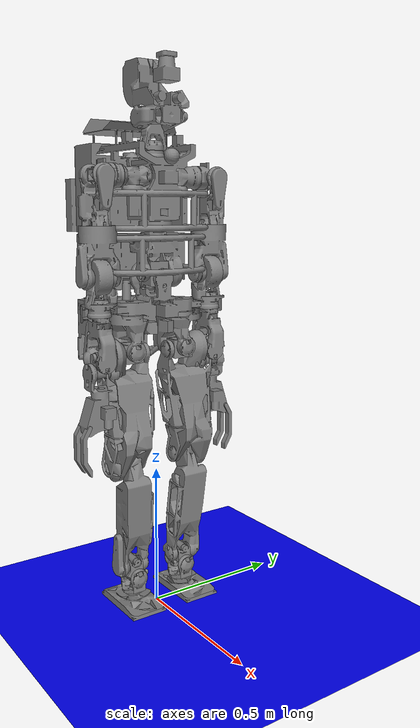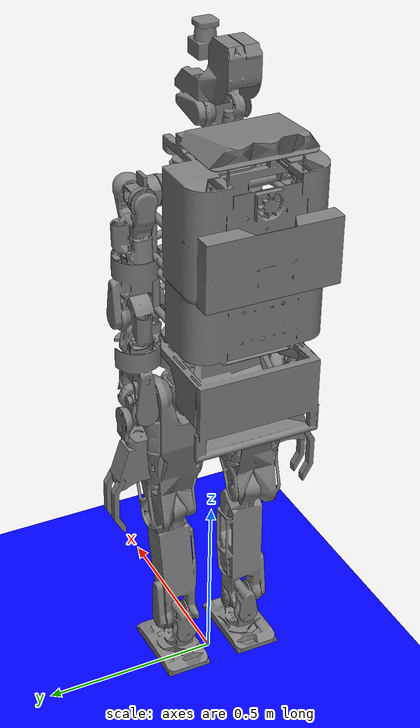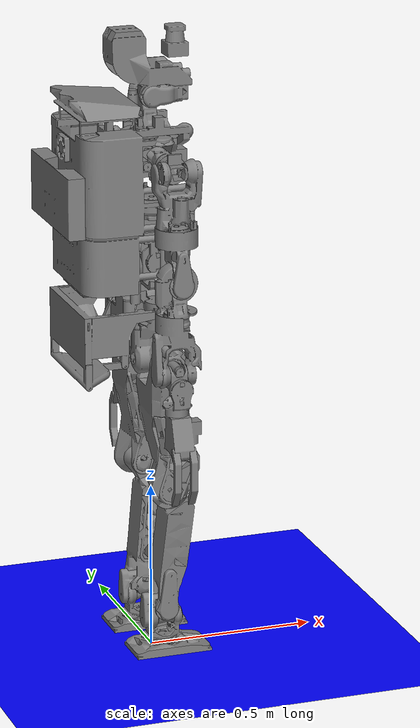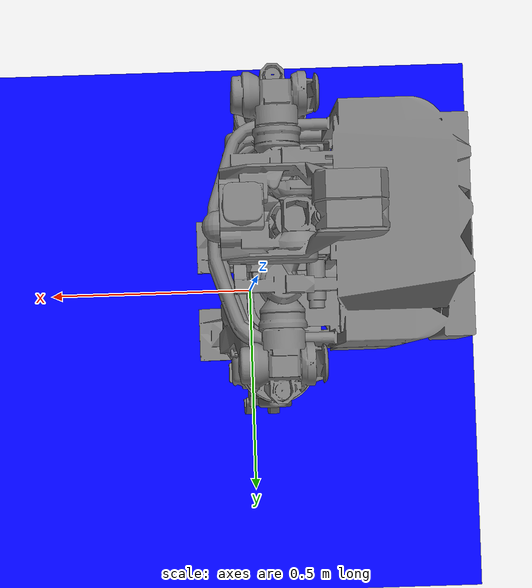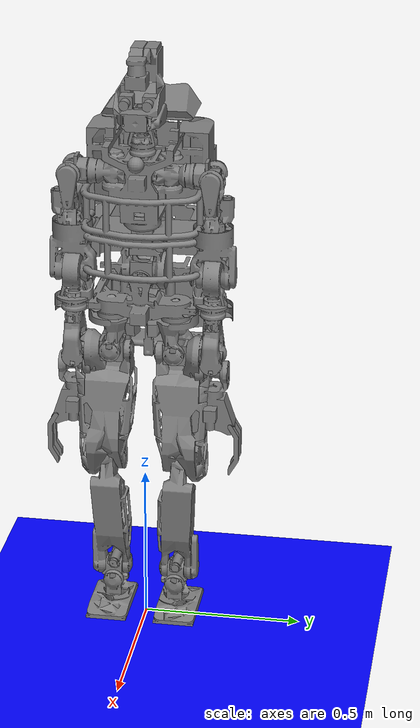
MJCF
<mujoco model="JAXON_JVRC">
    <compiler angle="radian" />
    <size njmax="500" nconmax="100" />
    <default>
        <joint damping="0.1"/>
        <motor ctrlrange="-.4 4." ctrllimited="true"/>
    </default>
    <contact>
        <exclude body1="CHEST_LINK0" body2="CHEST_LINK1"/>
        <exclude body1="CHEST_LINK1" body2="CHEST_LINK2"/>
        <exclude body1="CHEST_LINK2" body2="HEAD_LINK0"/>
        <exclude body1="HEAD_LINK0" body2="HEAD_LINK1"/>
        <exclude body1="HEAD_LINK1" body2="RANGE_LINK"/>
        <exclude body1="CHEST_LINK2" body2="LARM_LINK0"/>
        <exclude body1="LARM_LINK0" body2="LARM_LINK1"/>
        <exclude body1="LARM_LINK1" body2="LARM_LINK2"/>
        <exclude body1="LARM_LINK2" body2="LARM_LINK3"/>
        <exclude body1="LARM_LINK3" body2="LARM_LINK4"/>
        <exclude body1="LARM_LINK4" body2="LARM_LINK5"/>
        <exclude body1="LARM_LINK5" body2="LARM_LINK6"/>
        <exclude body1="LARM_LINK6" body2="LARM_LINK7"/>
        <exclude body1="LARM_LINK7" body2="LARM_FINGER0"/>
        <exclude body1="LARM_LINK7" body2="LARM_FINGER1"/>
        <exclude body1="RARM_LINK0" body2="RARM_LINK1"/>
        <exclude body1="RARM_LINK1" body2="RARM_LINK2"/>
        <exclude body1="RARM_LINK2" body2="RARM_LINK3"/>
        <exclude body1="RARM_LINK3" body2="RARM_LINK4"/>
        <exclude body1="RARM_LINK4" body2="RARM_LINK5"/>
        <exclude body1="RARM_LINK5" body2="RARM_LINK6"/>
        <exclude body1="RARM_LINK6" body2="RARM_LINK7"/>
        <exclude body1="RARM_LINK7" body2="RARM_FINGER0"/>
        <exclude body1="RARM_LINK7" body2="RARM_FINGER1"/>
        <exclude body1="LLEG_LINK0" body2="LLEG_LINK1"/>
        <exclude body1="LLEG_LINK1" body2="LLEG_LINK2"/>
        <exclude body1="LLEG_LINK2" body2="LLEG_LINK3"/>
        <exclude body1="LLEG_LINK3" body2="LLEG_LINK4"/>
        <exclude body1="LLEG_LINK4" body2="LLEG_LINK5"/>
        <exclude body1="RLEG_LINK0" body2="RLEG_LINK1"/>
        <exclude body1="RLEG_LINK1" body2="RLEG_LINK2"/>
        <exclude body1="RLEG_LINK2" body2="RLEG_LINK3"/>
        <exclude body1="RLEG_LINK3" body2="RLEG_LINK4"/>
        <exclude body1="RLEG_LINK4" body2="RLEG_LINK5"/>
    </contact>
    <asset>
        <mesh name="BODY_mesh" file="BODY_mesh.stl" />
        <mesh name="CHEST_LINK0_mesh" file="CHEST_LINK0_mesh.stl" />
        <mesh name="CHEST_LINK1_mesh" file="CHEST_LINK1_mesh.stl" />
        <mesh name="CHEST_LINK2_mesh" file="CHEST_LINK2_mesh.stl" />
        <mesh name="HEAD_LINK0_mesh" file="HEAD_LINK0_mesh.stl" />
        <mesh name="HEAD_LINK1_mesh" file="HEAD_LINK1_mesh.stl" />
        <mesh name="RANGE_LINK_mesh" file="RANGE_LINK_mesh.stl" />
        <mesh name="LARM_LINK0_mesh" file="LARM_LINK0_mesh.stl" />
        <mesh name="LARM_LINK1_mesh" file="LARM_LINK1_mesh.stl" />
        <mesh name="LARM_LINK2_mesh" file="LARM_LINK2_mesh.stl" />
        <mesh name="LARM_LINK3_mesh" file="LARM_LINK3_mesh.stl" />
        <mesh name="LARM_LINK4_mesh" file="LARM_LINK4_mesh.stl" />
        <mesh name="LARM_LINK5_mesh" file="LARM_LINK5_mesh.stl" />
        <mesh name="LARM_LINK6_mesh" file="LARM_LINK6_mesh.stl" />
        <mesh name="LARM_LINK7_mesh" file="LARM_LINK7_mesh.stl" />
        <mesh name="LARM_FINGER0_mesh" file="LARM_FINGER0_mesh.stl" />
        <mesh name="LARM_FINGER1_mesh" file="LARM_FINGER1_mesh.stl" />
        <mesh name="RARM_LINK0_mesh" file="RARM_LINK0_mesh.stl" />
        <mesh name="RARM_LINK1_mesh" file="RARM_LINK1_mesh.stl" />
        <mesh name="RARM_LINK2_mesh" file="RARM_LINK2_mesh.stl" />
        <mesh name="RARM_LINK3_mesh" file="RARM_LINK3_mesh.stl" />
        <mesh name="RARM_LINK4_mesh" file="RARM_LINK4_mesh.stl" />
        <mesh name="RARM_LINK5_mesh" file="RARM_LINK5_mesh.stl" />
        <mesh name="RARM_LINK6_mesh" file="RARM_LINK6_mesh.stl" />
        <mesh name="RARM_LINK7_mesh" file="RARM_LINK7_mesh.stl" />
        <mesh name="RARM_FINGER0_mesh" file="RARM_FINGER0_mesh.stl" />
        <mesh name="RARM_FINGER1_mesh" file="RARM_FINGER1_mesh.stl" />
        <mesh name="LLEG_LINK0_mesh" file="LLEG_LINK0_mesh.stl" />
        <mesh name="LLEG_LINK1_mesh" file="LLEG_LINK1_mesh.stl" />
        <mesh name="LLEG_LINK2_mesh" file="LLEG_LINK2_mesh.stl" />
        <mesh name="LLEG_LINK3_mesh" file="LLEG_LINK3_mesh.stl" />
        <mesh name="LLEG_LINK4_mesh" file="LLEG_LINK4_mesh.stl" />
        <mesh name="LLEG_LINK5_mesh" file="LLEG_LINK5_mesh.stl" />
        <mesh name="RLEG_LINK0_mesh" file="RLEG_LINK0_mesh.stl" />
        <mesh name="RLEG_LINK1_mesh" file="RLEG_LINK1_mesh.stl" />
        <mesh name="RLEG_LINK2_mesh" file="RLEG_LINK2_mesh.stl" />
        <mesh name="RLEG_LINK3_mesh" file="RLEG_LINK3_mesh.stl" />
        <mesh name="RLEG_LINK4_mesh" file="RLEG_LINK4_mesh.stl" />
        <mesh name="RLEG_LINK5_mesh" file="RLEG_LINK5_mesh.stl" />
    </asset>
    <worldbody>
        <geom name="plane" type="plane" size="1 1 .1" pos="0 0 0" rgba="0 0 1 1"/>
        <body name="jaxon" pos="0 0 1.05">
            <joint name="jaxon_free_joint" type="free"/>
            <geom pos="0 0 1.0225" type="mesh" mesh="BODY_mesh" />
            <body name="CHEST_LINK0" pos="0.006 0 0.128">
                <inertial pos="-0.0084 0.00137 0.01359" mass="0.866" diaginertia="0.00125384 0.00123407 0.000677392" />
                <joint name="CHEST_JOINT0" pos="0 0 0" axis="1 0 0" limited="true" range="-0.198551 0.198551" damping="0.2" />
                <geom pos="0.006 0 0.128" type="mesh" mesh="CHEST_LINK0_mesh" />
                <body name="CHEST_LINK1" pos="0 0 0.025">
                    <inertial pos="-0.111697 0.0039 0.03652" quat="0.0099888 0.65884 -0.00254466 0.752212" mass="18.23" diaginertia="0.482918 0.418072 0.181216" />
                    <joint name="CHEST_JOINT1" pos="0 0 0" axis="0 1 0" limited="true" range="-0.0349066 0.610865" damping="0.2" />
                    <geom pos="0 0 0.025" type="mesh" mesh="CHEST_LINK1_mesh" />
                    <body name="CHEST_LINK2" pos="0 0 0.3085">
                        <inertial pos="-0.13693 -0.00113 -0.05796" quat="0.396766 0.605351 0.509194 0.46567" mass="31.33" diaginertia="1.09683 1.06131 0.473474" />
                        <joint name="CHEST_JOINT2" pos="0 0 0" axis="0 0 1" limited="true" range="-1.0566 1.0566" damping="0.2" />
                        <geom pos="0 0 0.3085" type="mesh" mesh="CHEST_LINK2_mesh" />
                        <body name="HEAD_LINK0" pos="-0.015 0 0.0835">
                            <inertial pos="-0.01227 3e-05 0.03231" quat="0.707107 0 0 0.707107" mass="1.086" diaginertia="0.0035 0.0031 0.00119" />
                            <joint name="HEAD_JOINT0" pos="0 0 0" axis="0 0 1" limited="true" range="-0.575959 0.541052" damping="0.2" />
                            <geom pos="-0.015 0 0.0835" type="mesh" mesh="HEAD_LINK0_mesh" />
                            <body name="HEAD_LINK1" pos="0 0 0.102">
                                <inertial pos="0.042 0.004 0.058" quat="0.710144 0.293512 0.236094 0.594816" mass="4.274" diaginertia="0.0402075 0.0386678 0.0321897" />
                                <joint name="HEAD_JOINT1" pos="0 0 0" axis="0 1 0" limited="true" range="-0.575959 0.698132" damping="0.2" />
                                <geom pos="0 0 0.102" type="mesh" mesh="HEAD_LINK1_mesh" />
                                <body name="RANGE_LINK" pos="0.0559 0 0.14425">
                                    <inertial pos="0.03 0 0" mass="0.4" diaginertia="0.00024 0.00024 0.00024" />
                                    <joint name="motor_joint" pos="0 0 0" axis="1 0 0" limited="true" range="-3.14159 3.14159" damping="0.2" />
                                    <geom pos="0.0559 0 0.14425" type="mesh" mesh="RANGE_LINK_mesh" />
                                </body>
                            </body>
                        </body>
                        <body name="LARM_LINK0" pos="0 0.0875 0">
                            <inertial pos="-0.01745 0.00887 -0.00015" quat="0.5 0.5 -0.5 0.5" mass="1.048" diaginertia="0.00355486 0.0029762 0.00235085" />
                            <joint name="LARM_JOINT0" pos="0 0 0" axis="0 0 1" limited="true" range="-1.4208 0.144751" damping="0.2" />
                            <geom pos="0 0.0875 0" type="mesh" mesh="LARM_LINK0_mesh" />
                            <body name="LARM_LINK1" pos="0 0.07275 0">
                                <inertial pos="0.00011 0.01799 0.00288" quat="0.707107 0.707107 0 0" mass="0.298" diaginertia="0.000412035 0.000376771 0.000251611" />
                                <joint name="LARM_JOINT1" pos="0 0 0" axis="0 1 0" limited="true" range="-3.14159 3.14159" damping="0.2" />
                                <geom pos="0 0.07275 0" type="mesh" mesh="LARM_LINK1_mesh" />
                                <body name="LARM_LINK2" pos="0 0.057 0">
                                    <inertial pos="0.00845 0.00671 -0.0881" quat="0.707107 0 0 0.707107" mass="2.168" diaginertia="0.0133751 0.0127408 0.00460362" />
                                    <joint name="LARM_JOINT2" pos="0 0 0" axis="1 0 0" limited="true" range="0.2762 3.14159" damping="0.2" />
                                    <geom pos="0 0.057 0" type="mesh" mesh="LARM_LINK2_mesh" />
                                    <body name="LARM_LINK3" pos="0 0 -0.1965">
                                        <inertial pos="0.01393 4e-05 -0.07574" quat="0.707107 0 0 0.707107" mass="1.315" diaginertia="0.0055237 0.00451716 0.00217053" />
                                        <joint name="LARM_JOINT3" pos="0 0 0" axis="0 0 1" limited="true" range="-3.14159 3.14159" damping="0.2" />
                                        <geom pos="0 0 -0.1965" type="mesh" mesh="LARM_LINK3_mesh" />
                                        <body name="LARM_LINK4" pos="0 0 -0.126">
                                            <inertial pos="3e-05 0.00551 -0.0426" mass="1.641" diaginertia="0.00665559 0.00598857 0.00288237" />
                                            <joint name="LARM_JOINT4" pos="0 0 0" axis="0 1 0" limited="true" range="-2.19006 1.0472" damping="0.2" />
                                            <geom pos="0 0 -0.126" type="mesh" mesh="LARM_LINK4_mesh" />
                                            <body name="LARM_LINK5" pos="0 0 -0.1275">
                                                <inertial pos="0.01271 2e-05 -0.08415" quat="0.707107 0 0 0.707107" mass="1.305" diaginertia="0.00624028 0.00533939 0.00205604" />
                                                <joint name="LARM_JOINT5" pos="0 0 0" axis="0 0 1" limited="true" range="-3.14159 3.14159" damping="0.2" />
                                                <geom pos="0 0 -0.1275" type="mesh" mesh="LARM_LINK5_mesh" />
                                                <body name="LARM_LINK6" pos="0 0 -0.146">
                                                    <inertial pos="0.00013 0.01427 0.00188" mass="0.505" diaginertia="0.000901789 0.000626727 0.000593753" />
                                                    <joint name="LARM_JOINT6" pos="0 0 0" axis="1 0 0" limited="true" range="-1.54494 1.5708" damping="0.2" />
                                                    <geom pos="0 0 -0.146" type="mesh" mesh="LARM_LINK6_mesh" />
                                                    <body name="LARM_LINK7" pos="0 0 -0.04">
                                                        <inertial pos="0 0 -0.085" quat="0.999313 0.0370448 -0.000511674 -0.000402099" mass="2.257" diaginertia="0.020752 0.0198372 0.0130518" />
                                                        <joint name="LARM_JOINT7" pos="0 0 0" axis="0 1 0" limited="true" range="-1.41372 1.0472" damping="0.2" />
                                                        <geom pos="0 0 -0.04" type="mesh" mesh="LARM_LINK7_mesh" />
                                                        <body name="LARM_FINGER0" pos="0 -0.06 -0.1725" quat="9.38184e-07 0.707108 9.38187e-07 -0.707105">
                                                            <inertial pos="0.077 0.0138 0" quat="0.0449183 0.705679 -0.0449183 0.705679" mass="0.15" diaginertia="0.00128 0.00126494 2.45646e-05" />
                                                            <joint name="LARM_F_JOINT0" pos="0 0 0" axis="0 0 1" limited="true" range="-1.39626 0.610865" damping="0.2" />
                                                            <geom pos="0 -0.06 -0.1725" quat="9.38184e-07 0.707108 9.38187e-07 -0.707105" type="mesh" mesh="LARM_FINGER0_mesh" />
                                                        </body>
                                                        <body name="LARM_FINGER1" pos="0 0.06 -0.1725" quat="9.38184e-07 0.707108 9.38187e-07 -0.707105">
                                                            <inertial pos="0.077 0.0138 0" quat="0.0449183 0.705679 -0.0449183 0.705679" mass="0.3" diaginertia="0.00128 0.00126494 2.45646e-05" />
                                                            <joint name="LARM_F_JOINT1" pos="0 0 0" axis="0 0 1" limited="true" range="-0.610865 1.39626" damping="0.2" />
                                                            <geom pos="0 0.06 -0.1725" quat="9.38184e-07 0.707108 9.38187e-07 -0.707105" type="mesh" mesh="LARM_FINGER1_mesh" />
                                                        </body>
                                                    </body>
                                                </body>
                                            </body>
                                        </body>
                                    </body>
                                </body>
                            </body>
                        </body>
                        <body name="RARM_LINK0" pos="0 -0.0875 0">
                            <inertial pos="-0.01745 -0.00887 -0.00015" quat="0.5 0.5 -0.5 0.5" mass="1.048" diaginertia="0.00355486 0.0029762 0.00235085" />
                            <joint name="RARM_JOINT0" pos="0 0 0" axis="0 0 1" limited="true" range="-0.144751 1.4208" damping="0.2" />
                            <geom pos="0 -0.0875 0" type="mesh" mesh="RARM_LINK0_mesh" />
                            <body name="RARM_LINK1" pos="0 -0.07275 0">
                                <inertial pos="0.00011 -0.01799 0.00288" quat="0.707107 0.707107 0 0" mass="0.298" diaginertia="0.000412035 0.000376771 0.000251611" />
                                <joint name="RARM_JOINT1" pos="0 0 0" axis="0 1 0" limited="true" range="-3.14159 3.14159" damping="0.2" />
                                <geom pos="0 -0.07275 0" type="mesh" mesh="RARM_LINK1_mesh" />
                                <body name="RARM_LINK2" pos="0 -0.057 0">
                                    <inertial pos="0.00845 -0.00671 -0.0881" quat="0.707107 0 0 0.707107" mass="2.168" diaginertia="0.0133751 0.0127408 0.00460362" />
                                    <joint name="RARM_JOINT2" pos="0 0 0" axis="1 0 0" limited="true" range="-3.14159 -0.2762" damping="0.2" />
                                    <geom pos="0 -0.057 0" type="mesh" mesh="RARM_LINK2_mesh" />
                                    <body name="RARM_LINK3" pos="0 0 -0.1965">
                                        <inertial pos="0.01393 -4e-05 -0.07574" quat="0.707107 0 0 0.707107" mass="1.315" diaginertia="0.0055237 0.00451716 0.00217053" />
                                        <joint name="RARM_JOINT3" pos="0 0 0" axis="0 0 1" limited="true" range="-3.14159 3.14159" damping="0.2" />
                                        <geom pos="0 0 -0.1965" type="mesh" mesh="RARM_LINK3_mesh" />
                                        <body name="RARM_LINK4" pos="0 0 -0.126">
                                            <inertial pos="3e-05 -0.00551 -0.0426" mass="1.641" diaginertia="0.00665559 0.00598857 0.00288237" />
                                            <joint name="RARM_JOINT4" pos="0 0 0" axis="0 1 0" limited="true" range="-2.19006 1.0472" damping="0.2" />
                                            <geom pos="0 0 -0.126" type="mesh" mesh="RARM_LINK4_mesh" />
                                            <body name="RARM_LINK5" pos="0 0 -0.1275">
                                                <inertial pos="0.01271 -2e-05 -0.08415" quat="0.707107 0 0 0.707107" mass="1.305" diaginertia="0.00624028 0.00533939 0.00205604" />
                                                <joint name="RARM_JOINT5" pos="0 0 0" axis="0 0 1" limited="true" range="-3.14159 3.14159" damping="0.2" />
                                                <geom pos="0 0 -0.1275" type="mesh" mesh="RARM_LINK5_mesh" />
                                                <body name="RARM_LINK6" pos="0 0 -0.146">
                                                    <inertial pos="0.00013 -0.01427 0.00188" mass="0.505" diaginertia="0.000901789 0.000626727 0.000593753" />
                                                    <joint name="RARM_JOINT6" pos="0 0 0" axis="1 0 0" limited="true" range="-1.5708 1.54494" damping="0.2" />
                                                    <geom pos="0 0 -0.146" type="mesh" mesh="RARM_LINK6_mesh" />
                                                    <body name="RARM_LINK7" pos="0 0 -0.04">
                                                        <inertial pos="0 0 -0.085" quat="0.999313 -0.037044 0.000551637 0.001013" mass="2.257" diaginertia="0.020752 0.0198372 0.0130518" />
                                                        <joint name="RARM_JOINT7" pos="0 0 0" axis="0 1 0" limited="true" range="-1.41372 1.0472" damping="0.2" />
                                                        <geom pos="0 0 -0.04" type="mesh" mesh="RARM_LINK7_mesh" />
                                                        <body name="RARM_FINGER0" pos="0 0.06 -0.1725" quat="0.707105 0 0.707108 0">
                                                            <inertial pos="0.077 0.0138 0" quat="0.0449183 0.705679 -0.0449183 0.705679" mass="0.15" diaginertia="0.00128 0.00126494 2.45646e-05" />
                                                            <joint name="RARM_F_JOINT0" pos="0 0 0" axis="0 0 1" limited="true" range="-1.39626 0.610865" damping="0.2" />
                                                            <geom pos="0 0.06 -0.1725" quat="0.707105 0 0.707108 0" type="mesh" mesh="RARM_FINGER0_mesh" />
                                                        </body>
                                                        <body name="RARM_FINGER1" pos="0 -0.06 -0.1725" quat="0.707105 0 0.707108 0">
                                                            <inertial pos="0.077 0.0138 0" quat="0.0449183 0.705679 -0.0449183 0.705679" mass="0.3" diaginertia="0.00128 0.00126494 2.45646e-05" />
                                                            <joint name="RARM_F_JOINT1" pos="0 0 0" axis="0 0 1" limited="true" range="-0.610865 1.39626" damping="0.2" />
                                                            <geom pos="0 -0.06 -0.1725" quat="0.707105 0 0.707108 0" type="mesh" mesh="RARM_FINGER1_mesh" />
                                                        </body>
                                                    </body>
                                                </body>
                                            </body>
                                        </body>
                                    </body>
                                </body>
                            </body>
                        </body>
                    </body>
                </body>
            </body>
            <body name="LLEG_LINK0" pos="0 0.1 0.0095">
                <inertial pos="-0.02299 -0.00588 -0.07031" quat="0.908703 0.283036 -0.0102762 -0.306665" mass="2.915" diaginertia="0.00999933 0.00999641 0.00998966" />
                <joint name="LLEG_JOINT0" pos="0 0 0" axis="0 0 1" limited="true" range="-1.0972 1.02662" damping="0.2" />
                <geom pos="0 0.1 0.0095" type="mesh" mesh="LLEG_LINK0_mesh" />
                <body name="LLEG_LINK1" pos="0 0 -0.122">
                    <inertial pos="-0.00441 0.00696 -0.00694" quat="0.5 0.5 -0.5 0.5" mass="1.199" diaginertia="0.00343603 0.00299879 0.00179963" />
                    <joint name="LLEG_JOINT1" pos="0 0 0" axis="1 0 0" limited="true" range="-0.523599 0.725029" damping="0.2" />
                    <geom pos="0 0 -0.122" type="mesh" mesh="LLEG_LINK1_mesh" />
                    <body name="LLEG_LINK2" pos="0 0 -0.01">
                        <inertial pos="0.00658 0.03431 -0.18864" quat="0.850561 -0.0272808 -0.0126242 0.525016" mass="5.783" diaginertia="0.110101 0.110013 0.00999652" />
                        <joint name="LLEG_JOINT2" pos="0 0 0" axis="0 1 0" limited="true" range="-2.11843 0.785398" damping="0.2" />
                        <geom pos="0 0 -0.01" type="mesh" mesh="LLEG_LINK2_mesh" />
                        <body name="LLEG_LINK3" pos="0 0 -0.38">
                            <inertial pos="0.0176 0.01611 -0.17992" mass="3.156" diaginertia="0.0592962 0.0592638 0.00799027" />
                            <joint name="LLEG_JOINT3" pos="0 0 0" axis="0 1 0" limited="true" range="0 2.77419" damping="0.2" />
                            <geom pos="0 0 -0.38" type="mesh" mesh="LLEG_LINK3_mesh" />
                            <body name="LLEG_LINK4" pos="0 0 -0.38">
                                <inertial pos="-0.00769 0.00203 -0.00714" quat="0.5 0.5 0.5 0.5" mass="0.836" diaginertia="0.001606 0.00150135 0.0014428" />
                                <joint name="LLEG_JOINT4" pos="0 0 0" axis="0 1 0" limited="true" range="-1.38564 1.47343" damping="0.2" />
                                <geom pos="0 0 -0.38" type="mesh" mesh="LLEG_LINK4_mesh" />
                                <body name="LLEG_LINK5" pos="0 0 -0.04">
                                    <inertial pos="0.00064 0.00264 -0.05633" quat="0.5 0.5 0.5 0.5" mass="1.552" diaginertia="0.00907896 0.00902826 0.00442296" />
                                    <joint name="LLEG_JOINT5" pos="0 0 0" axis="1 0 0" limited="true" range="-1.0472 1.0472" damping="0.2" />
                                    <geom pos="0 0 -0.04" type="mesh" mesh="LLEG_LINK5_mesh" />
                                </body>
                            </body>
                        </body>
                    </body>
                </body>
            </body>
            <body name="RLEG_LINK0" pos="0 -0.1 0.0095">
                <inertial pos="-0.02299 0.00588 -0.07031" quat="0.908703 -0.283036 0.0102762 -0.306665" mass="2.915" diaginertia="0.00999933 0.00999641 0.00998966" />
                <joint name="RLEG_JOINT0" pos="0 0 0" axis="0 0 1" limited="true" range="-1.02662 1.0972" damping="0.2" />
                <geom pos="0 -0.1 0.0095" type="mesh" mesh="RLEG_LINK0_mesh" />
                <body name="RLEG_LINK1" pos="0 0 -0.122">
                    <inertial pos="-0.00441 -0.00696 -0.00694" quat="0.5 0.5 -0.5 0.5" mass="1.199" diaginertia="0.00343603 0.00299879 0.00179963" />
                    <joint name="RLEG_JOINT1" pos="0 0 0" axis="1 0 0" limited="true" range="-0.725029 0.523599" damping="0.2" />
                    <geom pos="0 0 -0.122" type="mesh" mesh="RLEG_LINK1_mesh" />
                    <body name="RLEG_LINK2" pos="0 0 -0.01">
                        <inertial pos="0.00658 -0.03431 -0.18864" quat="0.525016 -0.0126242 -0.0272808 0.850561" mass="5.783" diaginertia="0.110101 0.110013 0.00999652" />
                        <joint name="RLEG_JOINT2" pos="0 0 0" axis="0 1 0" limited="true" range="-2.11843 0.785398" damping="0.2" />
                        <geom pos="0 0 -0.01" type="mesh" mesh="RLEG_LINK2_mesh" />
                        <body name="RLEG_LINK3" pos="0 0 -0.38">
                            <inertial pos="0.0176 -0.01611 -0.17992" mass="3.156" diaginertia="0.0592962 0.0592638 0.00799027" />
                            <joint name="RLEG_JOINT3" pos="0 0 0" axis="0 1 0" limited="true" range="0 2.77419" damping="0.2" />
                            <geom pos="0 0 -0.38" type="mesh" mesh="RLEG_LINK3_mesh" />
                            <body name="RLEG_LINK4" pos="0 0 -0.38">
                                <inertial pos="-0.00769 -0.00203 -0.00714" quat="0.5 0.5 0.5 0.5" mass="0.836" diaginertia="0.001606 0.00150135 0.0014428" />
                                <joint name="RLEG_JOINT4" pos="0 0 0" axis="0 1 0" limited="true" range="-1.38564 1.47343" damping="0.2" />
                                <geom pos="0 0 -0.38" type="mesh" mesh="RLEG_LINK4_mesh" />
                                <body name="RLEG_LINK5" pos="0 0 -0.04">
                                    <inertial pos="0.00064 -0.00264 -0.05633" quat="0.5 0.5 0.5 0.5" mass="1.552" diaginertia="0.00907896 0.00902826 0.00442296" />
                                    <joint name="RLEG_JOINT5" pos="0 0 0" axis="1 0 0" limited="true" range="-1.0472 1.0472" damping="0.2" />
                                    <geom pos="0 0 -0.04" type="mesh" mesh="RLEG_LINK5_mesh" />
                                </body>
                            </body>
                        </body>
                    </body>
                </body>
            </body>
        </body>
    </worldbody>

    <actuator>
        <motor name="CHEST_JOINT0" gear="20" joint="CHEST_JOINT0"/>
        <motor name="CHEST_JOINT1" gear="20" joint="CHEST_JOINT1"/>
        <motor name="CHEST_JOINT2" gear="20" joint="CHEST_JOINT2"/>
        <motor name="HEAD_JOINT0" gear="20" joint="HEAD_JOINT0"/>
        <motor name="HEAD_JOINT1" gear="20" joint="HEAD_JOINT1"/>
        <motor name="LARM_JOINT0" gear="20" joint="LARM_JOINT0"/>
        <motor name="LARM_JOINT1" gear="20" joint="LARM_JOINT1"/>
        <motor name="LARM_JOINT2" gear="20" joint="LARM_JOINT2"/>
        <motor name="LARM_JOINT3" gear="20" joint="LARM_JOINT3"/>
        <motor name="LARM_JOINT4" gear="20" joint="LARM_JOINT4"/>
        <motor name="LARM_JOINT5" gear="20" joint="LARM_JOINT5"/>
        <motor name="LARM_JOINT6" gear="20" joint="LARM_JOINT6"/>
        <motor name="LARM_JOINT7" gear="20" joint="LARM_JOINT7"/>
        <motor name="LARM_F_JOINT0" gear="20" joint="LARM_F_JOINT0"/>
        <motor name="LARM_F_JOINT1" gear="20" joint="LARM_F_JOINT1"/>
        <motor name="RARM_JOINT0" gear="20" joint="RARM_JOINT0"/>
        <motor name="RARM_JOINT1" gear="20" joint="RARM_JOINT1"/>
        <motor name="RARM_JOINT2" gear="20" joint="RARM_JOINT2"/>
        <motor name="RARM_JOINT3" gear="20" joint="RARM_JOINT3"/>
        <motor name="RARM_JOINT4" gear="20" joint="RARM_JOINT4"/>
        <motor name="RARM_JOINT5" gear="20" joint="RARM_JOINT5"/>
        <motor name="RARM_JOINT6" gear="20" joint="RARM_JOINT6"/>
        <motor name="RARM_JOINT7" gear="20" joint="RARM_JOINT7"/>
        <motor name="RARM_F_JOINT0" gear="20" joint="RARM_F_JOINT0"/>
        <motor name="RARM_F_JOINT1" gear="20" joint="RARM_F_JOINT1"/>
        <motor name="LLEG_JOINT0" gear="20" joint="LLEG_JOINT0"/>
        <motor name="LLEG_JOINT1" gear="20" joint="LLEG_JOINT1"/>
        <motor name="LLEG_JOINT2" gear="20" joint="LLEG_JOINT2"/>
        <motor name="LLEG_JOINT3" gear="20" joint="LLEG_JOINT3"/>
        <motor name="LLEG_JOINT4" gear="20" joint="LLEG_JOINT4"/>
        <motor name="LLEG_JOINT5" gear="20" joint="LLEG_JOINT5"/>
        <motor name="RLEG_JOINT0" gear="20" joint="RLEG_JOINT0"/>
        <motor name="RLEG_JOINT1" gear="20" joint="RLEG_JOINT1"/>
        <motor name="RLEG_JOINT2" gear="20" joint="RLEG_JOINT2"/>
        <motor name="RLEG_JOINT3" gear="20" joint="RLEG_JOINT3"/>
        <motor name="RLEG_JOINT4" gear="20" joint="RLEG_JOINT4"/>
        <motor name="RLEG_JOINT5" gear="20" joint="RLEG_JOINT5"/>
    </actuator>

</mujoco>
